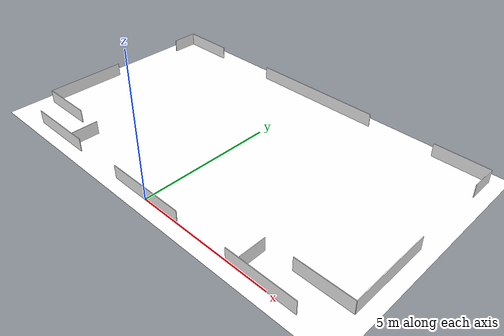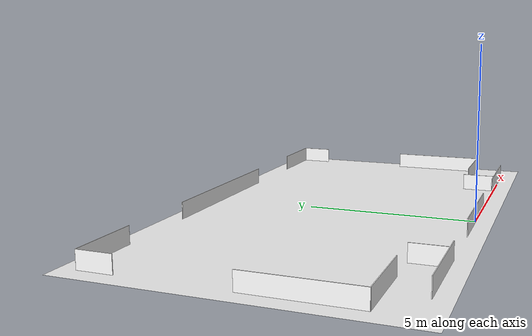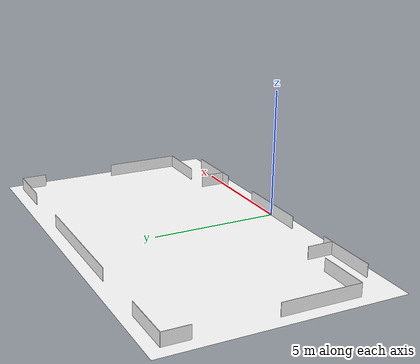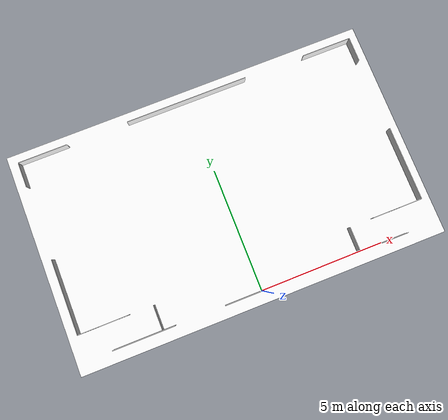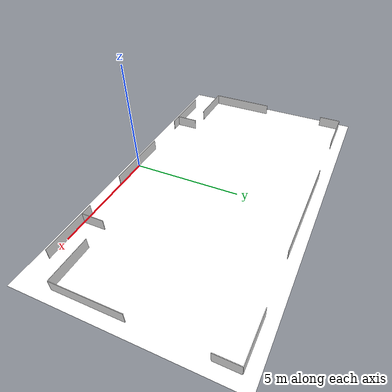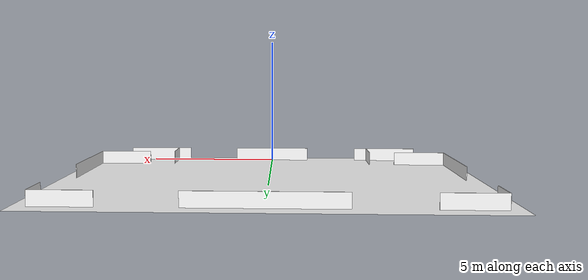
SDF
<?xml version="1.0" ?>
<sdf version="1.5">
  <model name="Logistics League Field 2017">
    <pose>0 4 0 0 0 0</pose>
    <static>true</static>
    <link name="field">
      <pose>0 0 0.01 0 0 0</pose>
      <collision name="collision">
        <geometry>
          <plane>
            <normal>0 0 1</normal>
            <size>15 9</size>
          </plane>
        </geometry>
        <surface>
          <friction>
            <ode>
              <mu>100</mu>
              <mu2>50</mu2>
            </ode>
          </friction>
        </surface>
      </collision>
      <visual name="carpet">
        <cast_shadows>false</cast_shadows>
        <geometry>
          <plane>
            <normal>0 0 1</normal>
            <size>15 9</size>
          </plane>
        </geometry>
        <material>
	  <ambient>1 1 1 1</ambient>
	  <diffuse>1 1 1 1</diffuse>
	  <specular>0.2 0.2 0.2 1.0</specular>
	</material>
      </visual>
    </link>

    <link name="wall_bottom_middle_left_down">
      <pose>-4 -3.5 0.25 0 0 0</pose>
      <visual name="wall_bottom_middle_left_down-visual">
        <geometry>
          <box>
            <size>.02 1 .5</size>
          </box>
        </geometry>
        <cast_shadows>false</cast_shadows>
        <material>
	  <ambient>1 1 1 1</ambient>
	  <diffuse>1 1 1 1</diffuse>
	  <specular>0.2 0.2 0.2 1.0</specular>
	</material>
      </visual>
      <collision name="wall_bottom_middle_left_down-collision">
        <geometry>
          <box>
            <size>.02 1 .5</size>
          </box>
        </geometry>
      </collision>
    </link>

    <link name="wall_bottom_middle_left_outer">
      <pose>-4.75 -4 0.25 0 0 1.570796327</pose>
      <visual name="wall_bottom_middle_left_outer-visual">
        <geometry>
          <box>
            <size>.02 2.5 .5</size>
          </box>
        </geometry>
        <cast_shadows>false</cast_shadows>
        <material>
	  <ambient>1 1 1 1</ambient>
	  <diffuse>1 1 1 1</diffuse>
	  <specular>0.2 0.2 0.2 1.0</specular>
	</material>
      </visual>
      <collision name="wall_bottom_middle_left_outer-collision">
        <geometry>
          <box>
            <size>.02 2.5 .5</size>
          </box>
        </geometry>
      </collision>
    </link>

    <link name="wall_bottom_left">
      <pose>-6 -3 0.25 0 0 1.570796327</pose>
      <visual name="wall_bottom_left-visual">
        <geometry>
          <box>
            <size>.02 2 .5</size>
          </box>
        </geometry>
        <cast_shadows>false</cast_shadows>
        <material>
	  <ambient>1 1 1 1</ambient>
	  <diffuse>1 1 1 1</diffuse>
	  <specular>0.2 0.2 0.2 1.0</specular>
	</material>
      </visual>
      <collision name="wall_bottom_left-collision">
        <geometry>
          <box>
            <size>.02 2 .5</size>
          </box>
        </geometry>
      </collision>
    </link>

    <link name="wall_bottom_middle">
      <pose>0 -4 0.25 0 0 1.570796327</pose>
      <visual name="wall_bottom_middle_right-visual">
        <geometry>
          <box>
            <size>.02 3 .5</size>
          </box>
        </geometry>
        <cast_shadows>false</cast_shadows>
        <material>
	  <ambient>1 1 1 1</ambient>
	  <diffuse>1 1 1 1</diffuse>
	  <specular>0.2 0.2 0.2 1.0</specular>
	</material>
      </visual>
      <collision name="wall_bottom_middle_right-collision">
        <geometry>
          <box>
            <size>.02 3 .5</size>
          </box>
        </geometry>
      </collision>
    </link>

    <link name="wall_bottom_middle_right_down">
      <pose>4 -3.5 0.25 0 0 0</pose>
      <visual name="wall_bottom_middle_right_down-visual">
        <geometry>
          <box>
            <size>.02 1 .5</size>
          </box>
        </geometry>
        <cast_shadows>false</cast_shadows>
        <material>
	  <ambient>1 1 1 1</ambient>
	  <diffuse>1 1 1 1</diffuse>
	  <specular>0.2 0.2 0.2 1.0</specular>
	</material>
      </visual>
      <collision name="wall_bottom_middle_right_down-collision">
        <geometry>
          <box>
            <size>.02 1 .5</size>
          </box>
        </geometry>
      </collision>
    </link>

    <link name="wall_bottom_middle_right_outer">
      <pose>4.75 -4 0.25 0 0 1.570796327</pose>
      <visual name="wall_bottom_middle_right_outer-visual">
        <geometry>
          <box>
            <size>.02 2.5 .5</size>
          </box>
        </geometry>
        <cast_shadows>false</cast_shadows>
        <material>
	  <ambient>1 1 1 1</ambient>
	  <diffuse>1 1 1 1</diffuse>
	  <specular>0.2 0.2 0.2 1.0</specular>
	</material>
      </visual>
      <collision name="wall_bottom_middle_right_outer-collision">
        <geometry>
          <box>
            <size>.02 2.5 .5</size>
          </box>
        </geometry>
      </collision>
    </link>

    <link name="wall_bottom_right">
      <pose>6 -3 0.25 0 0 1.570796327</pose>
      <visual name="wall_bottom_right-visual">
        <geometry>
          <box>
            <size>.02 2 .5</size>
          </box>
        </geometry>
        <cast_shadows>false</cast_shadows>
        <material>
	  <ambient>1 1 1 1</ambient>
	  <diffuse>1 1 1 1</diffuse>
	  <specular>0.2 0.2 0.2 1.0</specular>
	</material>
      </visual>
      <collision name="wall_bottom_right-collision">
        <geometry>
          <box>
            <size>.02 2 .5</size>
          </box>
        </geometry>
      </collision>
    </link>

    <link name="wall_left_bottom">
      <pose>-7 -1.5 0.25 0 0 0</pose>
      <visual name="wall_left_bottom-visual">
        <geometry>
          <box>
            <size>.02 3 .5</size>
          </box>
        </geometry>
        <cast_shadows>false</cast_shadows>
        <material>
	  <ambient>1 1 1 1</ambient>
	  <diffuse>1 1 1 1</diffuse>
	  <specular>0.2 0.2 0.2 1.0</specular>
	</material>
      </visual>
      <collision name="wall_left_bottom-collision">
        <geometry>
          <box>
            <size>.02 3 .5</size>
          </box>
        </geometry>
      </collision>
    </link>

    <link name="wall_left_top">
      <pose>-7 3.5 0.25 0 0 0</pose>
      <visual name="wall_left_top-visual">
        <geometry>
          <box>
            <size>.02 1 .5</size>
          </box>
        </geometry>
        <cast_shadows>false</cast_shadows>
        <material>
	  <ambient>1 1 1 1</ambient>
	  <diffuse>1 1 1 1</diffuse>
	  <specular>0.2 0.2 0.2 1.0</specular>
	</material>
      </visual>
      <collision name="wall_left_top-collision">
        <geometry>
          <box>
            <size>.02 1 .5</size>
          </box>
        </geometry>
      </collision>
    </link>

    <link name="wall_right_bottom">
      <pose>7 -1.5 0.25 0 0 0</pose>
      <visual name="wall_right_bottom-visual">
        <geometry>
          <box>
            <size>.02 3 .5</size>
          </box>
        </geometry>
        <cast_shadows>false</cast_shadows>
        <material>
	  <ambient>1 1 1 1</ambient>
	  <diffuse>1 1 1 1</diffuse>
	  <specular>0.2 0.2 0.2 1.0</specular>
	</material>
      </visual>
      <collision name="wall_right_bottom-collision">
        <geometry>
          <box>
            <size>.02 3 .5</size>
          </box>
        </geometry>
      </collision>
    </link>

    <link name="wall_right_top">
      <pose>7 3.5 0.25 0 0 0</pose>
      <visual name="wall_right_top-visual">
        <geometry>
          <box>
            <size>.02 1 .5</size>
          </box>
        </geometry>
        <cast_shadows>false</cast_shadows>
        <material>
	  <ambient>1 1 1 1</ambient>
	  <diffuse>1 1 1 1</diffuse>
	  <specular>0.2 0.2 0.2 1.0</specular>
	</material>
      </visual>
      <collision name="wall_right_top-collision">
        <geometry>
          <box>
            <size>.02 1 .5</size>
          </box>
        </geometry>
      </collision>
    </link>

    <link name="wall_top_middle">
      <pose>0 4 0.25 0 0 1.570796327</pose>
      <visual name="wall_top_middle-visual">
        <geometry>
          <box>
            <size>.02 5 .5</size>
          </box>
        </geometry>
        <cast_shadows>false</cast_shadows>
        <material>
	  <ambient>1 1 1 1</ambient>
	  <diffuse>1 1 1 1</diffuse>
	  <specular>0.2 0.2 0.2 1.0</specular>
	</material>
      </visual>
      <collision name="wall_top_middle-collision">
        <geometry>
          <box>
            <size>.02 5 .5</size>
          </box>
        </geometry>
      </collision>
    </link>

    <link name="wall_top_left">
      <pose>-6 4 0.25 0 0 1.570796327</pose>
      <visual name="wall_top_left-visual">
        <geometry>
          <box>
            <size>.02 2 .5</size>
          </box>
        </geometry>
        <cast_shadows>false</cast_shadows>
        <material>
	  <ambient>1 1 1 1</ambient>
	  <diffuse>1 1 1 1</diffuse>
	  <specular>0.2 0.2 0.2 1.0</specular>
	</material>
      </visual>
      <collision name="wall_top_left-collision">
        <geometry>
          <box>
            <size>.02 2 .5</size>
          </box>
        </geometry>
      </collision>
    </link>

    <link name="wall_top_right">
      <pose>6 4 0.25 0 0 1.570796327</pose>
      <visual name="wall_top_right-visual">
        <geometry>
          <box>
             <size>.02 2 .5</size>
          </box>
        </geometry>
        <cast_shadows>false</cast_shadows>
        <material>
	  <ambient>1 1 1 1</ambient>
	  <diffuse>1 1 1 1</diffuse>
	  <specular>0.2 0.2 0.2 1.0</specular>
	</material>
      </visual>
      <collision name="wall_top_right-collision">
        <geometry>
          <box>
            <size>.02 2 .5</size>
          </box>
        </geometry>
      </collision>
    </link>

  </model>
</sdf>
